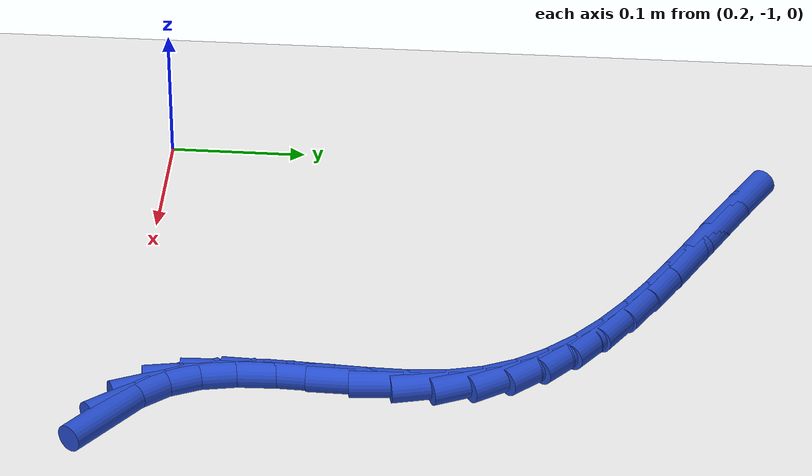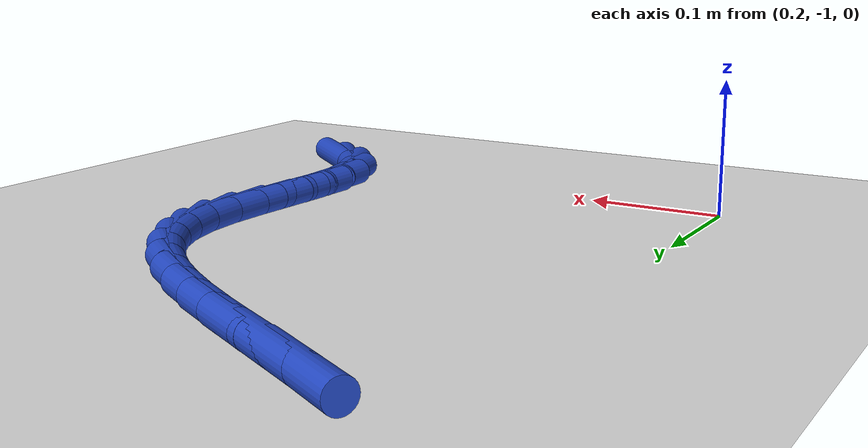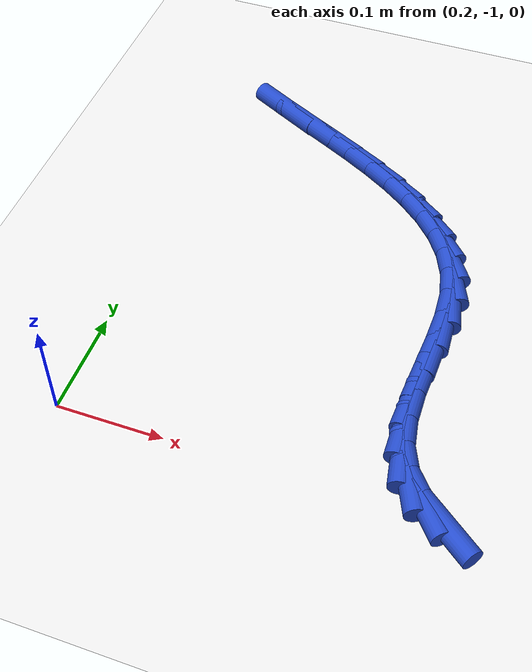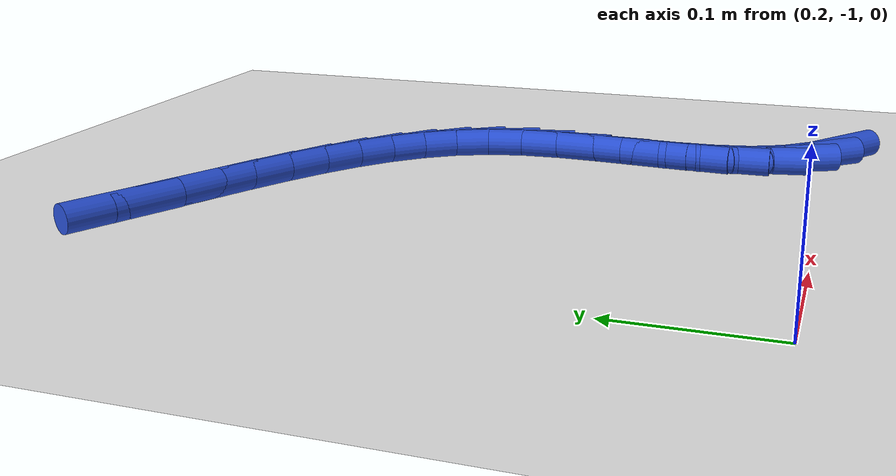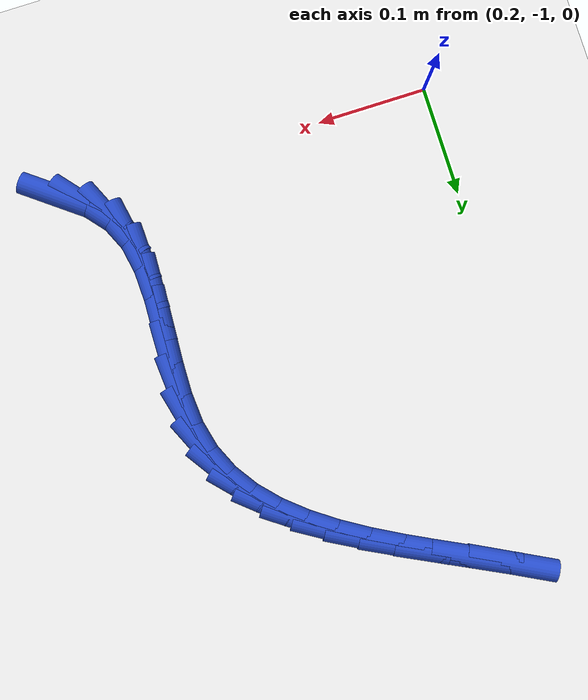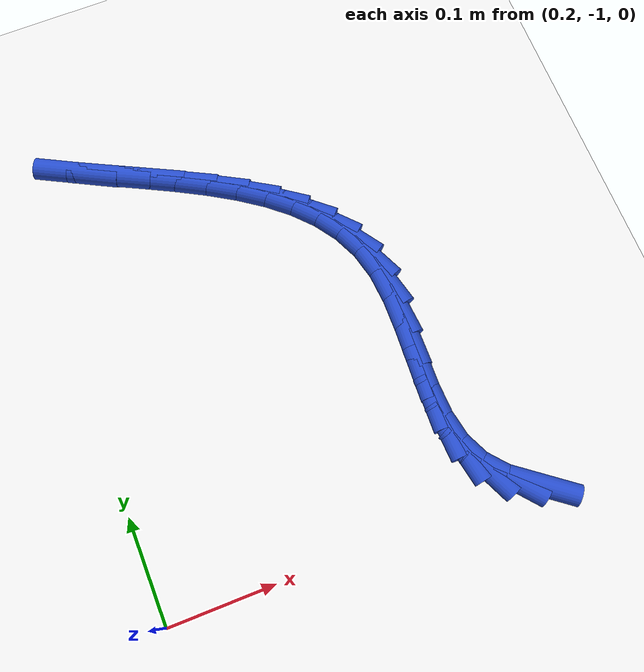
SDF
<sdf version="1.6">
 <world name="default">
  <model name="ground_plane">
   <static>1</static>
   <link name="link">
    <collision name="collision">
     <geometry><plane><normal>0 0 1</normal><size>100 100</size></plane></geometry>
     <surface><friction><ode><mu>100</mu><mu2>50</mu2></ode></friction></surface>
    </collision>
    <visual name="visual">
     <cast_shadows>0</cast_shadows>
     <geometry><plane><normal>0 0 1</normal><size>100 100</size></plane></geometry>
     <material>
      <script><uri>file://media/materials/scripts/gazebo.material</uri><name>Gazebo/WhiteGlow</name></script>
     </material>
    </visual>
   </link>
  </model>
  <model name="line">
   <link name="link_207">
    <pose>0.5403354307780129 -1.0026354701015547 0.01 0 1.57 -0.652967455353738</pose>
    <collision name="collision">
     <geometry><cylinder><radius>0.01</radius><length>0.08</length></cylinder></geometry>
    </collision>
    <visual name="visual">
     <material>
      <script><name>Gazebo/Blue</name><uri>file://media/materials/scripts/gazebo.material</uri></script>
     </material>
     <geometry><cylinder><radius>0.01</radius><length>0.08</length></cylinder></geometry>
    </visual>
   </link>
   <link name="link_208">
    <pose>0.5197122036727486 -0.9868608177357575 0.01 0 1.57 -0.8763104453581495</pose>
    <collision name="collision">
     <geometry><cylinder><radius>0.01</radius><length>0.08</length></cylinder></geometry>
    </collision>
    <visual name="visual">
     <material>
      <script><name>Gazebo/Blue</name><uri>file://media/materials/scripts/gazebo.material</uri></script>
     </material>
     <geometry><cylinder><radius>0.01</radius><length>0.08</length></cylinder></geometry>
    </visual>
   </link>
   <link name="link_209">
    <pose>0.5039400842039352 -0.9679245582774753 0.01 0 1.57 -1.1496402097353786</pose>
    <collision name="collision">
     <geometry><cylinder><radius>0.01</radius><length>0.08</length></cylinder></geometry>
    </collision>
    <visual name="visual">
     <material>
      <script><name>Gazebo/Blue</name><uri>file://media/materials/scripts/gazebo.material</uri></script>
     </material>
     <geometry><cylinder><radius>0.01</radius><length>0.08</length></cylinder></geometry>
    </visual>
   </link>
   <link name="link_210">
    <pose>0.49383182659970476 -0.9453594655690976 0.01 0 1.57 -1.3918114968433126</pose>
    <collision name="collision">
     <geometry><cylinder><radius>0.01</radius><length>0.08</length></cylinder></geometry>
    </collision>
    <visual name="visual">
     <material>
      <script><name>Gazebo/Blue</name><uri>file://media/materials/scripts/gazebo.material</uri></script>
     </material>
     <geometry><cylinder><radius>0.01</radius><length>0.08</length></cylinder></geometry>
    </visual>
   </link>
   <link name="link_211">
    <pose>0.4891247093629898 -0.9193419282289703 0.01 0 1.57 -1.5401667769501886</pose>
    <collision name="collision">
     <geometry><cylinder><radius>0.01</radius><length>0.08</length></cylinder></geometry>
    </collision>
    <visual name="visual">
     <material>
      <script><name>Gazebo/Blue</name><uri>file://media/materials/scripts/gazebo.material</uri></script>
     </material>
     <geometry><cylinder><radius>0.01</radius><length>0.08</length></cylinder></geometry>
    </visual>
   </link>
   <link name="link_212">
    <pose>0.4882511056816409 -0.8908292510061597 0.01 0 1.57 1.5270372775937437</pose>
    <collision name="collision">
     <geometry><cylinder><radius>0.01</radius><length>0.08</length></cylinder></geometry>
    </collision>
    <visual name="visual">
     <material>
      <script><name>Gazebo/Blue</name><uri>file://media/materials/scripts/gazebo.material</uri></script>
     </material>
     <geometry><cylinder><radius>0.01</radius><length>0.08</length></cylinder></geometry>
    </visual>
   </link>
   <link name="link_213">
    <pose>0.4895648699869192 -0.8608257279315401 0.01 0 1.57 1.5100321888386758</pose>
    <collision name="collision">
     <geometry><cylinder><radius>0.01</radius><length>0.08</length></cylinder></geometry>
    </collision>
    <visual name="visual">
     <material>
      <script><name>Gazebo/Blue</name><uri>file://media/materials/scripts/gazebo.material</uri></script>
     </material>
     <geometry><cylinder><radius>0.01</radius><length>0.08</length></cylinder></geometry>
    </visual>
   </link>
   <link name="link_214">
    <pose>0.4914198567100865 -0.8303356530359868 0.01 0 1.57 1.5457763505193467</pose>
    <collision name="collision">
     <geometry><cylinder><radius>0.01</radius><length>0.08</length></cylinder></geometry>
    </collision>
    <visual name="visual">
     <material>
      <script><name>Gazebo/Blue</name><uri>file://media/materials/scripts/gazebo.material</uri></script>
     </material>
     <geometry><cylinder><radius>0.01</radius><length>0.08</length></cylinder></geometry>
    </visual>
   </link>
   <link name="link_215">
    <pose>0.4921699202824042 -0.8003633203503744 0.01 0 1.57 -1.5005785911936564</pose>
    <collision name="collision">
     <geometry><cylinder><radius>0.01</radius><length>0.08</length></cylinder></geometry>
    </collision>
    <visual name="visual">
     <material>
      <script><name>Gazebo/Blue</name><uri>file://media/materials/scripts/gazebo.material</uri></script>
     </material>
     <geometry><cylinder><radius>0.01</radius><length>0.08</length></cylinder></geometry>
    </visual>
   </link>
   <link name="link_216">
    <pose>0.4901689151351338 -0.7719130239055777 0.01 0 1.57 -1.3363993450486527</pose>
    <collision name="collision">
     <geometry><cylinder><radius>0.01</radius><length>0.08</length></cylinder></geometry>
    </collision>
    <visual name="visual">
     <material>
      <script><name>Gazebo/Blue</name><uri>file://media/materials/scripts/gazebo.material</uri></script>
     </material>
     <geometry><cylinder><radius>0.01</radius><length>0.08</length></cylinder></geometry>
    </visual>
   </link>
   <link name="link_217">
    <pose>0.4839520971236832 -0.7458779442126896 0.01 0 1.57 -1.1491257624040996</pose>
    <collision name="collision">
     <geometry><cylinder><radius>0.01</radius><length>0.08</length></cylinder></geometry>
    </collision>
    <visual name="visual">
     <material>
      <script><name>Gazebo/Blue</name><uri>file://media/materials/scripts/gazebo.material</uri></script>
     </material>
     <geometry><cylinder><radius>0.01</radius><length>0.08</length></cylinder></geometry>
    </visual>
   </link>
   <link name="link_218">
    <pose>0.4733904102328917 -0.7223331149017034 0.01 0 1.57 -0.9760500097622048</pose>
    <collision name="collision">
     <geometry><cylinder><radius>0.01</radius><length>0.08</length></cylinder></geometry>
    </collision>
    <visual name="visual">
     <material>
      <script><name>Gazebo/Blue</name><uri>file://media/materials/scripts/gazebo.material</uri></script>
     </material>
     <geometry><cylinder><radius>0.01</radius><length>0.08</length></cylinder></geometry>
    </visual>
   </link>
   <link name="link_219">
    <pose>0.45895151397911177 -0.7009880644070096 0.01 0 1.57 -0.8280663542107439</pose>
    <collision name="collision">
     <geometry><cylinder><radius>0.01</radius><length>0.08</length></cylinder></geometry>
    </collision>
    <visual name="visual">
     <material>
      <script><name>Gazebo/Blue</name><uri>file://media/materials/scripts/gazebo.material</uri></script>
     </material>
     <geometry><cylinder><radius>0.01</radius><length>0.08</length></cylinder></geometry>
    </visual>
   </link>
   <link name="link_220">
    <pose>0.44110584116760276 -0.6815506224448485 0.01 0 1.57 -0.7088716172252143</pose>
    <collision name="collision">
     <geometry><cylinder><radius>0.01</radius><length>0.08</length></cylinder></geometry>
    </collision>
    <visual name="visual">
     <material>
      <script><name>Gazebo/Blue</name><uri>file://media/materials/scripts/gazebo.material</uri></script>
     </material>
     <geometry><cylinder><radius>0.01</radius><length>0.08</length></cylinder></geometry>
    </visual>
   </link>
   <link name="link_221">
    <pose>0.4203238246036236 -0.6637286187314597 0.01 0 1.57 -0.6171973001885002</pose>
    <collision name="collision">
     <geometry><cylinder><radius>0.01</radius><length>0.08</length></cylinder></geometry>
    </collision>
    <visual name="visual">
     <material>
      <script><name>Gazebo/Blue</name><uri>file://media/materials/scripts/gazebo.material</uri></script>
     </material>
     <geometry><cylinder><radius>0.01</radius><length>0.08</length></cylinder></geometry>
    </visual>
   </link>
   <link name="link_222">
    <pose>0.39707589709243357 -0.647229882983084 0.01 0 1.57 -0.5497343386781296</pose>
    <collision name="collision">
     <geometry><cylinder><radius>0.01</radius><length>0.08</length></cylinder></geometry>
    </collision>
    <visual name="visual">
     <material>
      <script><name>Gazebo/Blue</name><uri>file://media/materials/scripts/gazebo.material</uri></script>
     </material>
     <geometry><cylinder><radius>0.01</radius><length>0.08</length></cylinder></geometry>
    </visual>
   </link>
   <link name="link_223">
    <pose>0.37183249143929187 -0.6317622449159609 0.01 0 1.57 -0.5030170783490318</pose>
    <collision name="collision">
     <geometry><cylinder><radius>0.01</radius><length>0.08</length></cylinder></geometry>
    </collision>
    <visual name="visual">
     <material>
      <script><name>Gazebo/Blue</name><uri>file://media/materials/scripts/gazebo.material</uri></script>
     </material>
     <geometry><cylinder><radius>0.01</radius><length>0.08</length></cylinder></geometry>
    </visual>
   </link>
   <link name="link_224">
    <pose>0.3450640404494576 -0.6170335342463309 0.01 0 1.57 -0.47424157738211714</pose>
    <collision name="collision">
     <geometry><cylinder><radius>0.01</radius><length>0.08</length></cylinder></geometry>
    </collision>
    <visual name="visual">
     <material>
      <script><name>Gazebo/Blue</name><uri>file://media/materials/scripts/gazebo.material</uri></script>
     </material>
     <geometry><cylinder><radius>0.01</radius><length>0.08</length></cylinder></geometry>
    </visual>
   </link>
   <link name="link_225">
    <pose>0.3172409769281899 -0.6027515806904338 0.01 0 1.57 -0.46149782641514203</pose>
    <collision name="collision">
     <geometry><cylinder><radius>0.01</radius><length>0.08</length></cylinder></geometry>
    </collision>
    <visual name="visual">
     <material>
      <script><name>Gazebo/Blue</name><uri>file://media/materials/scripts/gazebo.material</uri></script>
     </material>
     <geometry><cylinder><radius>0.01</radius><length>0.08</length></cylinder></geometry>
    </visual>
   </link>
   <link name="link_226">
    <pose>0.288833733680748 -0.5886242139645096 0.01 0 1.57 -0.4637725644708309</pose>
    <collision name="collision">
     <geometry><cylinder><radius>0.01</radius><length>0.08</length></cylinder></geometry>
    </collision>
    <visual name="visual">
     <material>
      <script><name>Gazebo/Blue</name><uri>file://media/materials/scripts/gazebo.material</uri></script>
     </material>
     <geometry><cylinder><radius>0.01</radius><length>0.08</length></cylinder></geometry>
    </visual>
   </link>
   <link name="link_227">
    <pose>0.2603127435123909 -0.5743592637847985 0.01 0 1.57 -0.4808952143856363</pose>
    <collision name="collision">
     <geometry><cylinder><radius>0.01</radius><length>0.08</length></cylinder></geometry>
    </collision>
    <visual name="visual">
     <material>
      <script><name>Gazebo/Blue</name><uri>file://media/materials/scripts/gazebo.material</uri></script>
     </material>
     <geometry><cylinder><radius>0.01</radius><length>0.08</length></cylinder></geometry>
    </visual>
   </link>
  </model>
 </world>
</sdf>
